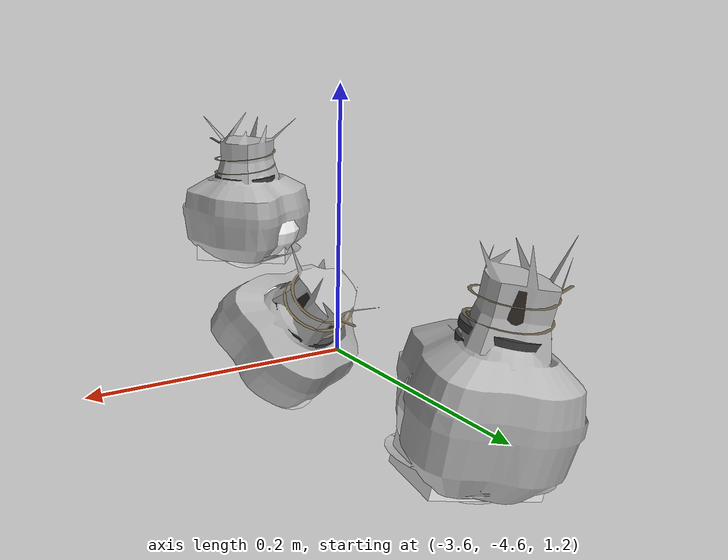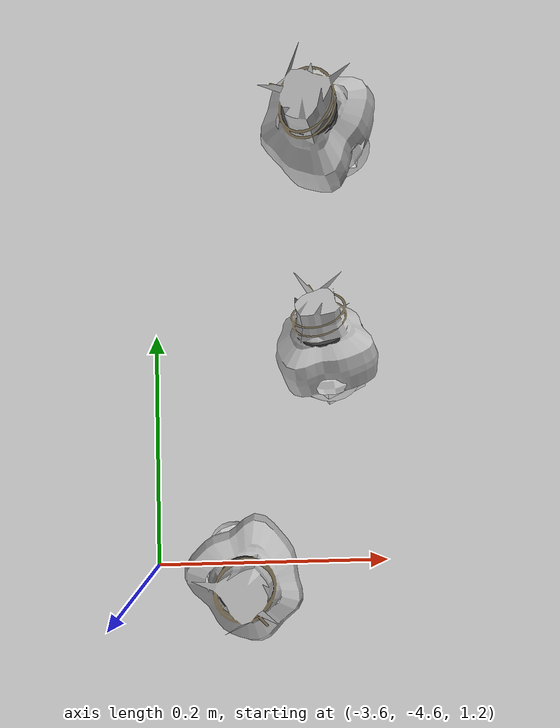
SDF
<sdf version="1.11">
 <world name="peach_orchard">
  <model name="ground">
   <static>true</static>
   <link name="link">
    <visual name="soil">
     <geometry><plane><normal>0 0 1</normal><size>32 22</size></plane></geometry>
     <material>
      <ambient>1 1 1 1</ambient>
      <diffuse>1 1 1 1</diffuse>
      <specular>0.1 0.1 0.1 1</specular>
      <pbr>
       <metal>
        <albedo_map>textures/soil_albedo.png</albedo_map>
        <normal_map type="tangent">textures/soil_normal.png</normal_map>
        <roughness>0.95</roughness>
        <metalness>0</metalness>
       </metal>
      </pbr>
     </material>
    </visual>
    <collision name="c_soil">
     <geometry><plane><normal>0 0 1</normal><size>32 22</size></plane></geometry>
    </collision>
   </link>
  </model>
  <model name="peach_tree_r1_t1_04">
   <pose>-3.51568 -4.58603 1.28667 0 0.000905414 -1.03392</pose>
   <static>true</static>
   <link name="bag">
    <visual name="bag_mesh">
     <pose>0 0 0.040794 0 0 -0</pose>
     <geometry>
      <mesh><uri>model://peach_sim/meshes/bagged_peach.glb</uri><scale>1.04559 1.13275 0.927136</scale></mesh>
     </geometry>
    </visual>
    <visual name="body">
     <pose>0 0 0.022794 0 0 0</pose>
     <geometry><ellipsoid><radii>0.0392098 0.0294515 0.0246175</radii></ellipsoid></geometry>
     <material>
      <ambient>1 1 1 1</ambient>
      <diffuse>1 1 1 1</diffuse>
      <specular>0.1 0.1 0.1 1</specular>
      <pbr>
       <metal>
        <albedo_map>textures/paper_bag_albedo.png</albedo_map>
        <normal_map type="tangent">textures/paper_bag_normal.png</normal_map>
        <roughness>0.72</roughness>
        <metalness>0</metalness>
       </metal>
      </pbr>
     </material>
    </visual>
    <visual name="bottom_fold">
     <pose>0 0 0.012 0 0 0.35</pose>
     <geometry><box><size>0.0607752 0.0338692 0.022</size></box></geometry>
     <material>
      <ambient>1 1 1 1</ambient>
      <diffuse>1 1 1 1</diffuse>
      <specular>0.1 0.1 0.1 1</specular>
      <pbr>
       <metal>
        <albedo_map>textures/paper_bag_albedo.png</albedo_map>
        <normal_map type="tangent">textures/paper_bag_normal.png</normal_map>
        <roughness>0.8</roughness>
        <metalness>0</metalness>
       </metal>
      </pbr>
     </material>
    </visual>
    <visual name="fruit">
     <pose>0 0 0.017178 0 0 0</pose>
     <geometry><sphere><radius>0.0241052</radius></sphere></geometry>
     <material>
      <ambient>1 1 1 1</ambient>
      <diffuse>1 1 1 1</diffuse>
      <specular>0.1 0.1 0.1 1</specular>
      <pbr>
       <metal>
        <albedo_map>textures/fruit_skin_albedo.png</albedo_map>
        <normal_map type="tangent">textures/fruit_skin_normal.png</normal_map>
        <roughness>0.55</roughness>
        <metalness>0</metalness>
       </metal>
      </pbr>
     </material>
    </visual>
    <visual name="neck">
     <pose>0 0 0.054588 0 0 0</pose>
     <geometry><cylinder><radius>0.013</radius><length>0.018</length></cylinder></geometry>
     <material>
      <ambient>1 1 1 1</ambient>
      <diffuse>1 1 1 1</diffuse>
      <specular>0.1 0.1 0.1 1</specular>
      <pbr>
       <metal>
        <albedo_map>textures/paper_bag_albedo.png</albedo_map>
        <normal_map type="tangent">textures/paper_bag_normal.png</normal_map>
        <roughness>0.75</roughness>
        <metalness>0</metalness>
       </metal>
      </pbr>
     </material>
    </visual>
    <visual name="gather">
     <pose>0 0 0.035588 0 0 0</pose>
     <geometry><cylinder><radius>0.019</radius><length>0.02</length></cylinder></geometry>
     <material>
      <ambient>1 1 1 1</ambient>
      <diffuse>1 1 1 1</diffuse>
      <specular>0.1 0.1 0.1 1</specular>
      <pbr>
       <metal>
        <albedo_map>textures/paper_bag_albedo.png</albedo_map>
        <normal_map type="tangent">textures/paper_bag_normal.png</normal_map>
        <roughness>0.8</roughness>
        <metalness>0</metalness>
       </metal>
      </pbr>
     </material>
    </visual>
    <visual name="inner_paper">
     <pose>0 0 0.059588 0 0 0</pose>
     <geometry><cylinder><radius>0.01</radius><length>0.008</length></cylinder></geometry>
     <material>
      <ambient>0.180392 0.14902 0.133333 1</ambient>
      <diffuse>0.180392 0.14902 0.133333 1</diffuse>
      <specular>0.1 0.1 0.1 1</specular>
     </material>
    </visual>
    <visual name="wire_0">
     <pose>0 0 0.049588 0 0 0</pose>
     <geometry><cylinder><radius>0.0205</radius><length>0.0035</length></cylinder></geometry>
     <material>
      <ambient>0.25 0.25 0.25 1</ambient>
      <diffuse>0.25 0.25 0.25 1</diffuse>
      <specular>0.1 0.1 0.1 1</specular>
     </material>
    </visual>
    <visual name="wire_1">
     <pose>0 0 0.056588 0 0 0</pose>
     <geometry><cylinder><radius>0.0205</radius><length>0.0035</length></cylinder></geometry>
     <material>
      <ambient>0.25 0.25 0.25 1</ambient>
      <diffuse>0.25 0.25 0.25 1</diffuse>
      <specular>0.1 0.1 0.1 1</specular>
     </material>
    </visual>
    <visual name="wire_tail">
     <pose>0.01 0 0.057588 0 0.521618 0</pose>
     <geometry><cylinder><radius>0.0012</radius><length>0.026</length></cylinder></geometry>
     <material>
      <ambient>0.25 0.25 0.25 1</ambient>
      <diffuse>0.25 0.25 0.25 1</diffuse>
      <specular>0.1 0.1 0.1 1</specular>
     </material>
    </visual>
    <collision name="c_body">
     <pose>0 0 0.022794 0 0 0</pose>
     <geometry><cylinder><radius>0.0392098</radius><length>0.045588</length></cylinder></geometry>
    </collision>
   </link>
  </model>
  <model name="peach_tree_r1_t1_05">
   <pose>-3.45 -4.43971 1.27 0 0.787753 1.77258</pose>
   <static>true</static>
   <link name="bag">
    <visual name="bag_mesh">
     <pose>0 0 0.0382561 0 0 0</pose>
     <geometry>
      <mesh><uri>model://peach_sim/meshes/bagged_peach.glb</uri><scale>0.941491 1.09806 0.869456</scale></mesh>
     </geometry>
    </visual>
    <visual name="body">
     <pose>0 0 0.0202561 0 0 0</pose>
     <geometry><ellipsoid><radii>0.0353059 0.0285496 0.0218765</radii></ellipsoid></geometry>
     <material>
      <ambient>1 1 1 1</ambient>
      <diffuse>1 1 1 1</diffuse>
      <specular>0.1 0.1 0.1 1</specular>
      <pbr>
       <metal>
        <albedo_map>textures/paper_bag_albedo.png</albedo_map>
        <normal_map type="tangent">textures/paper_bag_normal.png</normal_map>
        <roughness>0.72</roughness>
        <metalness>0</metalness>
       </metal>
      </pbr>
     </material>
    </visual>
    <visual name="bottom_fold">
     <pose>0 0 0.012 0 0 0.35</pose>
     <geometry><box><size>0.0547242 0.0328321 0.022</size></box></geometry>
     <material>
      <ambient>1 1 1 1</ambient>
      <diffuse>1 1 1 1</diffuse>
      <specular>0.1 0.1 0.1 1</specular>
      <pbr>
       <metal>
        <albedo_map>textures/paper_bag_albedo.png</albedo_map>
        <normal_map type="tangent">textures/paper_bag_normal.png</normal_map>
        <roughness>0.8</roughness>
        <metalness>0</metalness>
       </metal>
      </pbr>
     </material>
    </visual>
    <visual name="fruit">
     <pose>0 0 0.0170397 0 0 0</pose>
     <geometry><sphere><radius>0.0239613</radius></sphere></geometry>
     <material>
      <ambient>1 1 1 1</ambient>
      <diffuse>1 1 1 1</diffuse>
      <specular>0.1 0.1 0.1 1</specular>
      <pbr>
       <metal>
        <albedo_map>textures/fruit_skin_albedo.png</albedo_map>
        <normal_map type="tangent">textures/fruit_skin_normal.png</normal_map>
        <roughness>0.55</roughness>
        <metalness>0</metalness>
       </metal>
      </pbr>
     </material>
    </visual>
    <visual name="neck">
     <pose>0 0 0.0495121 0 0 0</pose>
     <geometry><cylinder><radius>0.013</radius><length>0.018</length></cylinder></geometry>
     <material>
      <ambient>1 1 1 1</ambient>
      <diffuse>1 1 1 1</diffuse>
      <specular>0.1 0.1 0.1 1</specular>
      <pbr>
       <metal>
        <albedo_map>textures/paper_bag_albedo.png</albedo_map>
        <normal_map type="tangent">textures/paper_bag_normal.png</normal_map>
        <roughness>0.75</roughness>
        <metalness>0</metalness>
       </metal>
      </pbr>
     </material>
    </visual>
    <visual name="gather">
     <pose>0 0 0.0305121 0 0 0</pose>
     <geometry><cylinder><radius>0.019</radius><length>0.02</length></cylinder></geometry>
     <material>
      <ambient>1 1 1 1</ambient>
      <diffuse>1 1 1 1</diffuse>
      <specular>0.1 0.1 0.1 1</specular>
      <pbr>
       <metal>
        <albedo_map>textures/paper_bag_albedo.png</albedo_map>
        <normal_map type="tangent">textures/paper_bag_normal.png</normal_map>
        <roughness>0.8</roughness>
        <metalness>0</metalness>
       </metal>
      </pbr>
     </material>
    </visual>
    <visual name="inner_paper">
     <pose>0 0 0.0545121 0 0 0</pose>
     <geometry><cylinder><radius>0.01</radius><length>0.008</length></cylinder></geometry>
     <material>
      <ambient>0.180392 0.14902 0.133333 1</ambient>
      <diffuse>0.180392 0.14902 0.133333 1</diffuse>
      <specular>0.1 0.1 0.1 1</specular>
     </material>
    </visual>
    <visual name="wire_0">
     <pose>0 0 0.0445121 0 0 0</pose>
     <geometry><cylinder><radius>0.0205</radius><length>0.0035</length></cylinder></geometry>
     <material>
      <ambient>0.25 0.25 0.25 1</ambient>
      <diffuse>0.25 0.25 0.25 1</diffuse>
      <specular>0.1 0.1 0.1 1</specular>
     </material>
    </visual>
    <visual name="wire_1">
     <pose>0 0 0.0515121 0 0 0</pose>
     <geometry><cylinder><radius>0.0205</radius><length>0.0035</length></cylinder></geometry>
     <material>
      <ambient>0.25 0.25 0.25 1</ambient>
      <diffuse>0.25 0.25 0.25 1</diffuse>
      <specular>0.1 0.1 0.1 1</specular>
     </material>
    </visual>
    <visual name="wire_tail">
     <pose>0.01 0 0.0525121 0 0.521618 0</pose>
     <geometry><cylinder><radius>0.0012</radius><length>0.026</length></cylinder></geometry>
     <material>
      <ambient>0.25 0.25 0.25 1</ambient>
      <diffuse>0.25 0.25 0.25 1</diffuse>
      <specular>0.1 0.1 0.1 1</specular>
     </material>
    </visual>
    <collision name="c_body">
     <pose>0 0 0.0202561 0 0 0</pose>
     <geometry><cylinder><radius>0.0353059</radius><length>0.0405121</length></cylinder></geometry>
    </collision>
   </link>
  </model>
  <model name="peach_tree_r1_t1_06">
   <pose>-3.45 -4.25383 1.27 0 0.205932 2.66505</pose>
   <static>true</static>
   <link name="bag">
    <visual name="bag_mesh">
     <pose>0 0 0.0493244 0 0 0</pose>
     <geometry>
      <mesh><uri>model://peach_sim/meshes/bagged_peach.glb</uri><scale>1.0176 1.25806 1.12101</scale></mesh>
     </geometry>
    </visual>
    <visual name="body">
     <pose>0 0 0.0313244 0 0 0</pose>
     <geometry><ellipsoid><radii>0.0381599 0.0327095 0.0338303</radii></ellipsoid></geometry>
     <material>
      <ambient>1 1 1 1</ambient>
      <diffuse>1 1 1 1</diffuse>
      <specular>0.1 0.1 0.1 1</specular>
      <pbr>
       <metal>
        <albedo_map>textures/paper_bag_albedo.png</albedo_map>
        <normal_map type="tangent">textures/paper_bag_normal.png</normal_map>
        <roughness>0.72</roughness>
        <metalness>0</metalness>
       </metal>
      </pbr>
     </material>
    </visual>
    <visual name="bottom_fold">
     <pose>0 0 0.012 0 0 0.35</pose>
     <geometry><box><size>0.0591478 0.037616 0.022</size></box></geometry>
     <material>
      <ambient>1 1 1 1</ambient>
      <diffuse>1 1 1 1</diffuse>
      <specular>0.1 0.1 0.1 1</specular>
      <pbr>
       <metal>
        <albedo_map>textures/paper_bag_albedo.png</albedo_map>
        <normal_map type="tangent">textures/paper_bag_normal.png</normal_map>
        <roughness>0.8</roughness>
        <metalness>0</metalness>
       </metal>
      </pbr>
     </material>
    </visual>
    <visual name="fruit">
     <pose>0 0 0.0198127 0 0 0</pose>
     <geometry><sphere><radius>0.0268452</radius></sphere></geometry>
     <material>
      <ambient>1 1 1 1</ambient>
      <diffuse>1 1 1 1</diffuse>
      <specular>0.1 0.1 0.1 1</specular>
      <pbr>
       <metal>
        <albedo_map>textures/fruit_skin_albedo.png</albedo_map>
        <normal_map type="tangent">textures/fruit_skin_normal.png</normal_map>
        <roughness>0.55</roughness>
        <metalness>0</metalness>
       </metal>
      </pbr>
     </material>
    </visual>
    <visual name="neck">
     <pose>0 0 0.0716487 0 0 0</pose>
     <geometry><cylinder><radius>0.013</radius><length>0.018</length></cylinder></geometry>
     <material>
      <ambient>1 1 1 1</ambient>
      <diffuse>1 1 1 1</diffuse>
      <specular>0.1 0.1 0.1 1</specular>
      <pbr>
       <metal>
        <albedo_map>textures/paper_bag_albedo.png</albedo_map>
        <normal_map type="tangent">textures/paper_bag_normal.png</normal_map>
        <roughness>0.75</roughness>
        <metalness>0</metalness>
       </metal>
      </pbr>
     </material>
    </visual>
    <visual name="gather">
     <pose>0 0 0.0526487 0 0 0</pose>
     <geometry><cylinder><radius>0.019</radius><length>0.02</length></cylinder></geometry>
     <material>
      <ambient>1 1 1 1</ambient>
      <diffuse>1 1 1 1</diffuse>
      <specular>0.1 0.1 0.1 1</specular>
      <pbr>
       <metal>
        <albedo_map>textures/paper_bag_albedo.png</albedo_map>
        <normal_map type="tangent">textures/paper_bag_normal.png</normal_map>
        <roughness>0.8</roughness>
        <metalness>0</metalness>
       </metal>
      </pbr>
     </material>
    </visual>
    <visual name="inner_paper">
     <pose>0 0 0.0766487 0 0 0</pose>
     <geometry><cylinder><radius>0.01</radius><length>0.008</length></cylinder></geometry>
     <material>
      <ambient>0.180392 0.14902 0.133333 1</ambient>
      <diffuse>0.180392 0.14902 0.133333 1</diffuse>
      <specular>0.1 0.1 0.1 1</specular>
     </material>
    </visual>
    <visual name="wire_0">
     <pose>0 0 0.0666487 0 0 0</pose>
     <geometry><cylinder><radius>0.0205</radius><length>0.0035</length></cylinder></geometry>
     <material>
      <ambient>0.25 0.25 0.25 1</ambient>
      <diffuse>0.25 0.25 0.25 1</diffuse>
      <specular>0.1 0.1 0.1 1</specular>
     </material>
    </visual>
    <visual name="wire_1">
     <pose>0 0 0.0736487 0 0 0</pose>
     <geometry><cylinder><radius>0.0205</radius><length>0.0035</length></cylinder></geometry>
     <material>
      <ambient>0.25 0.25 0.25 1</ambient>
      <diffuse>0.25 0.25 0.25 1</diffuse>
      <specular>0.1 0.1 0.1 1</specular>
     </material>
    </visual>
    <visual name="wire_tail">
     <pose>0.01 0 0.0746487 0 0.521618 0</pose>
     <geometry><cylinder><radius>0.0012</radius><length>0.026</length></cylinder></geometry>
     <material>
      <ambient>0.25 0.25 0.25 1</ambient>
      <diffuse>0.25 0.25 0.25 1</diffuse>
      <specular>0.1 0.1 0.1 1</specular>
     </material>
    </visual>
    <collision name="c_body">
     <pose>0 0 0.0313244 0 0 0</pose>
     <geometry><cylinder><radius>0.0381599</radius><length>0.0626487</length></cylinder></geometry>
    </collision>
   </link>
  </model>
 </world>
</sdf>
